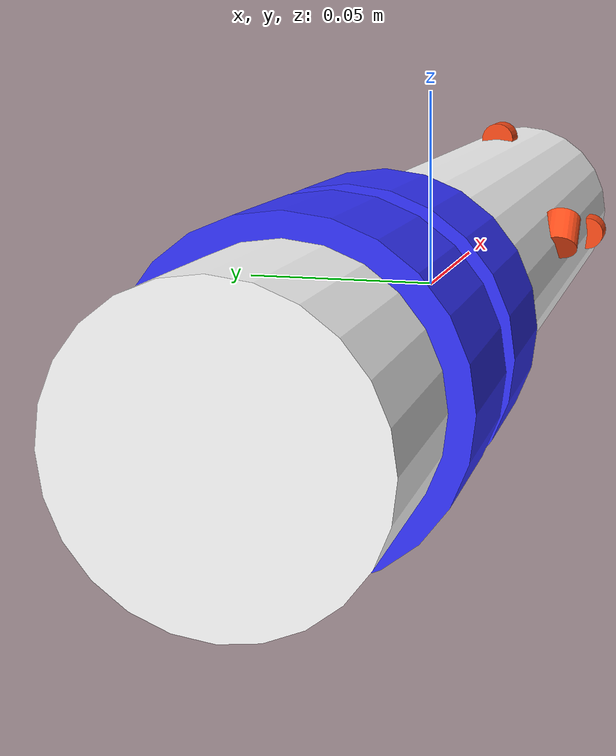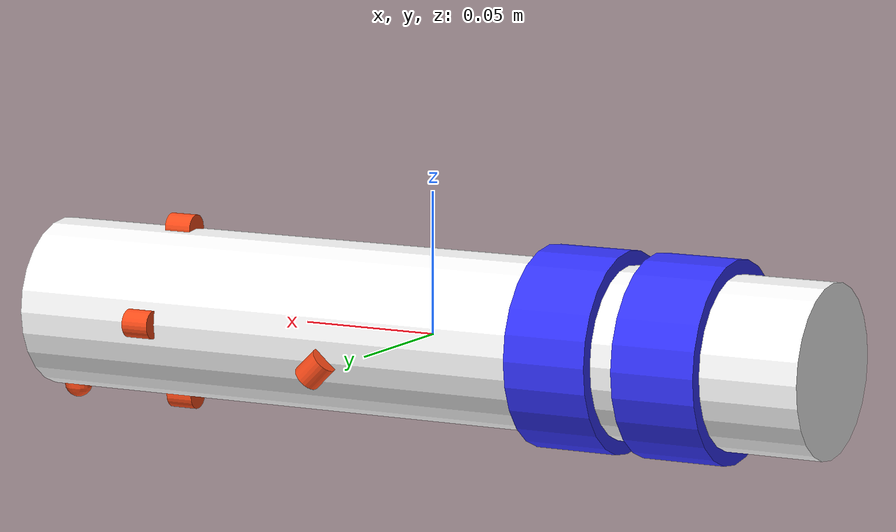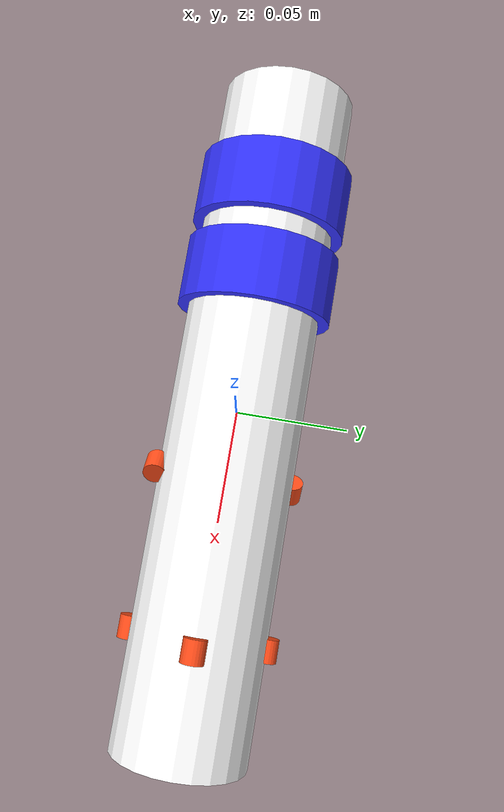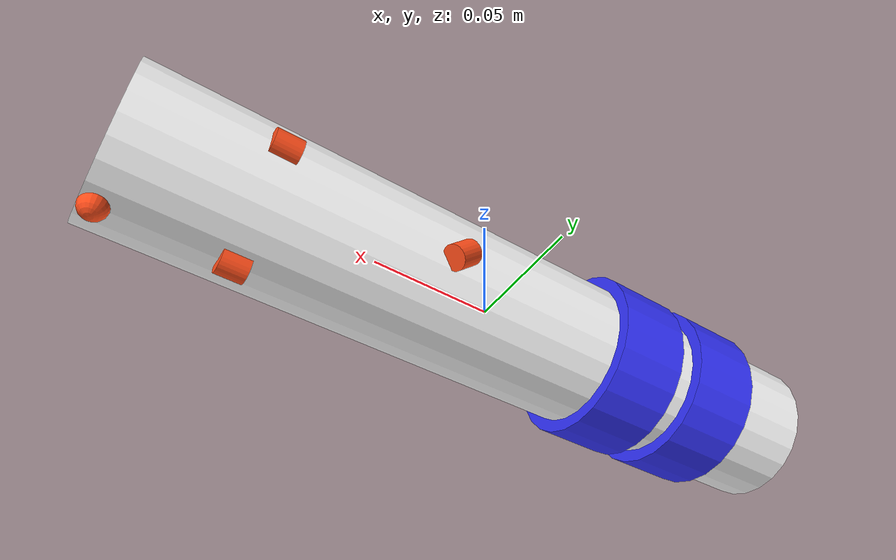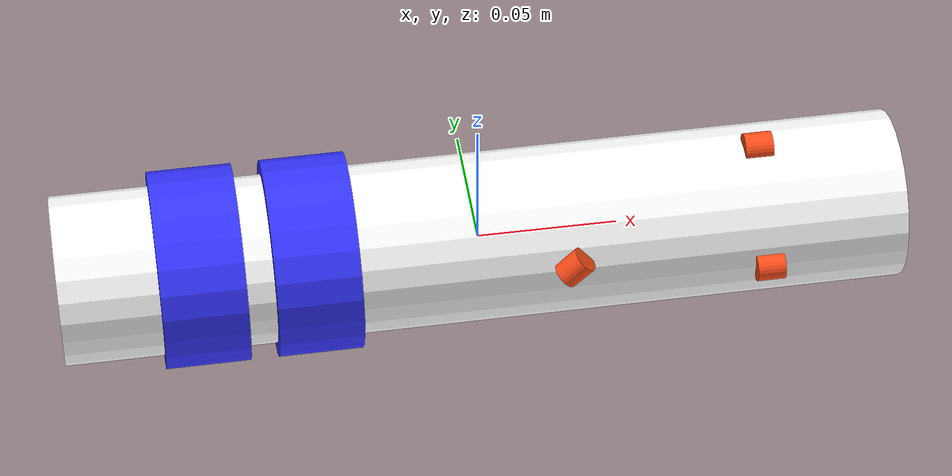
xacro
<?xml version="1.0"?>
<robot name="cleaner_bot" xmlns:xacro="http://www.ros.org/wiki/xacro">

    <xacro:include filename="color.xacro"/>
    <!-- base structure -->
    <xacro:property name="srct_radius" value="0.030"/>
    <xacro:property name="srct_length" value="0.30"/>
    <!-- brush  -->
    <xacro:property name="brush_radius" value="0.035"/>
    <xacro:property name="brush_length" value="0.03"/>
    <!--brush offset-->
    <xacro:property name="brs_off" value="0.1"/>
    <!-- wheels  -->
    <xacro:property name="wheel_radius" value="0.005"/>
    <xacro:property name="wheel_length" value="0.01"/>
    <!--wheel offset-->
    <xacro:property name="whl_off" value="0.1"/>
    <!-- support -->
    <xacro:property name="spt_radius" value="0.005"/>
    <xacro:property name="spt_length" value="0.01"/>
    <!--support offset-->
    <xacro:property name="spt_off" value="0.03"/>
    <!--caster wheel-->
    <xacro:property name="caster_radius" value="0.005"/>
    <!--caster wheel offset-->
    <xacro:property name="cst_off" value="0.03"/>

        <!-- creating base link -->

    <link name="base_link" >

    </link>

        <!-- creating structure -->

    <link name="srct_link" >
        <visual>
            <geometry>
                <cylinder radius="${srct_radius}" length="${srct_length}" />
            </geometry>
            <origin xyz="0 0 0" rpy="0 ${pi/2} 0"/>
            <material name= "white" />
        </visual>

    </link>

    <joint name="base_srct_joint" type="fixed">
        <parent link="base_link"/>
        <child link="srct_link" />
        <origin xyz="0 0 0" rpy="0 0 0"/>
        <axis xyz="1 0 0"/>
    </joint>

        <!-- creating cleaning brush -->

    <link name="ft_brush_link">
        <visual>
            <geometry>
                <cylinder radius="${brush_radius}" length="${brush_length}" />
            </geometry>
            <origin xyz="-${brs_off} 0 0" rpy="0 ${pi/2} 0"/>
            <material name= "blue" />
        </visual>
    </link>

    <joint name="base1_brush_joint" type="continuous">
        <parent link="base_link"/>
        <child link="ft_brush_link" />
        <origin xyz="0 0 0" rpy="0 0 0"/>
        <axis xyz="1 0 0"/>
    </joint>

    <link name="sd_brush_link">
        <visual>
            <geometry>
                <cylinder radius="${brush_radius}" length="${brush_length}" />
            </geometry>
            <origin xyz="-${brs_off - 0.04} 0 0" rpy="0 ${pi/2} 0"/>
            <material name= "blue" />
        </visual>
    </link>

    <joint name="base2_brush_joint" type="continuous">
        <parent link="base_link"/>
        <child link="sd_brush_link" />
        <origin xyz="0 0 0" rpy="0 0 0"/>
        <axis xyz="1 0 0"/>
    </joint>

        <!-- creating wheels -->

        <!-- first wheel -->

    <link name= "a_wheel_link">
        <visual>
            <geometry>
                <cylinder radius="${wheel_radius}" length="${wheel_length}" />
            </geometry>
            <origin xyz="${whl_off} 0 ${whl_off- 0.07}" rpy=" 0 ${pi/2} 0" />
            <material name="orange"/>
        </visual>
    </link>

    <joint name="n_wheel_joint" type="continuous">
        <parent link="base_link"/>
        <child link="a_wheel_link" />
        <origin xyz="0 0 0" rpy="0 0 0" />
        <axis xyz="1 0 0" />
    </joint>

        <!-- second wheel -->

    <link name= "b_wheel_link">
        <visual>
            <geometry>
                <cylinder radius="${wheel_radius}" length="${wheel_length}" />
            </geometry>
            <origin xyz="${whl_off} 0 -${whl_off- 0.07}" rpy=" 0 ${pi/2} 0" />
            <material name="orange"/>
        </visual>

    </link>

    <joint name="s_wheel_joint" type="continuous">
        <parent link="base_link"/>
        <child link="b_wheel_link" />
        <origin xyz="0 0 0" rpy="0 0 0" />
        <axis xyz="1 0 0" />
    </joint>

        <!-- third wheel -->

    <link name= "c_wheel_link">
        <visual>
            <geometry>
                <cylinder radius="${wheel_radius}" length="${wheel_length}" />
            </geometry>
            <origin xyz="${whl_off} ${whl_off- 0.07} 0" rpy=" 0 ${pi/2} 0" />
            <material name="orange"/>
        </visual>
    </link>

    <joint name="w_wheel_joint" type="continuous">
        <parent link="base_link"/>
        <child link="c_wheel_link" />
        <origin xyz="0 0 0" rpy="0 0 0" />
        <axis xyz="1 0 0" />
    </joint>

        <!-- fourt wheel -->

    <link name= "d_wheel_link">
        <visual>
            <geometry>
                <cylinder radius="${wheel_radius}" length="${wheel_length}" />
            </geometry>
            <origin xyz="${whl_off} -${whl_off- 0.07} 0" rpy=" 0 ${pi/2} 0" />
            <material name="orange"/>
        </visual>
    </link>

    <joint name="e_wheel_joint" type="continuous">
        <parent link="base_link"/>
        <child link="d_wheel_link" />
        <origin xyz="0 0 0" rpy="0 0 0" />
        <axis xyz="1 0 0" />
    </joint>

        <!-- support wheel -->

    <link name= "spf_wheel_link">
        <visual>
            <geometry>
                <cylinder radius="${spt_radius}" length="${spt_length}" />
            </geometry>
            <origin xyz="${spt_off} ${spt_off} -${spt_off - 0.02}" rpy="0 -${pi/4} 0" />
            <material name="orange"/>
        </visual>
    </link>

    <joint name="s1_wheel_joint" type="fixed">
        <parent link="base_link"/>
        <child link="spf_wheel_link" />
        <origin xyz="0 0 0" rpy="0 0 0" />
        <axis xyz="1 0 0" />
    </joint>

    <link name= "sps_wheel_link">
        <visual>
            <geometry>
                <cylinder radius="${spt_radius}" length="${spt_length}" />
            </geometry>
            <origin xyz="${spt_off} -${spt_off} ${spt_off - 0.02}" rpy="0 ${pi/4} 0" />
            <material name="orange"/>
        </visual>
    </link>

    <joint name="s2_wheel joint" type="fixed">
        <parent link="base_link"/>
        <child link="sps_wheel_link" />
        <origin xyz="0 0 0" rpy="0 0 0" />
        <axis xyz="1 0 0" />
    </joint>

        <!-- caster wheel -->

    <link name= "caster_link">
        <visual>
            <geometry>
                <sphere radius="${caster_radius}" />
            </geometry>
            <origin xyz="${cst_off + 0.115} 0 -${cst_off}" rpy="0 0 0" />
            <material name="orange"/>
        </visual>
    </link>

    <joint name="caster_wheel joint" type="fixed">
        <parent link="base_link"/>
        <child link="caster_link" />
        <origin xyz="0 0 0" rpy="0 0 0" />
        <axis xyz="1 0 0" />
    </joint>

</robot>

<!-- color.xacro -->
<robot xmlns:xacro="http://www.ros.org/wiki/xacro" >

    <material name="white">
        <color rgba="1 1 1 1" />
    </material>

    <material name="orange">
        <color rgba="1 0.3 0.1 1"/>
    </material>

    <material name="blue">
        <color rgba="0.2 0.2 1 1"/>
    </material>

    <material name="black">
        <color rgba="0 0 0 1"/>
    </material>

    <material name="red">
        <color rgba="1 0 0 1"/>
    </material>

</robot>
